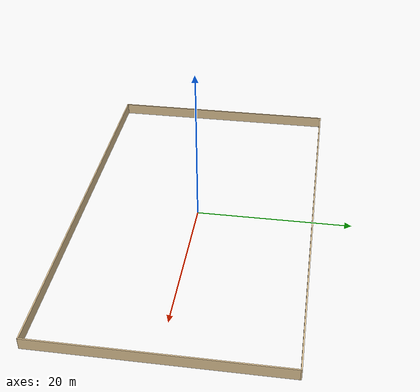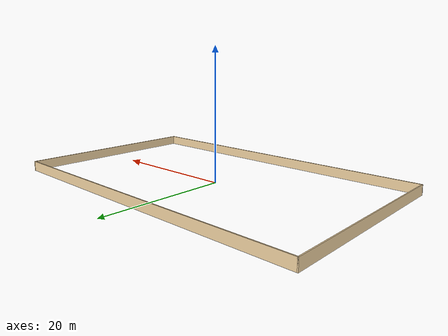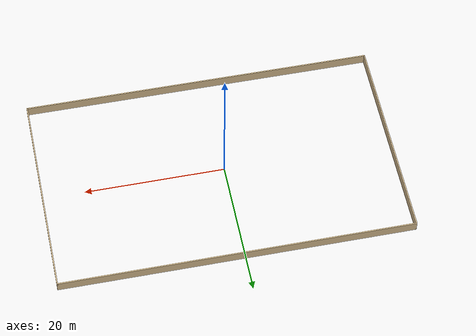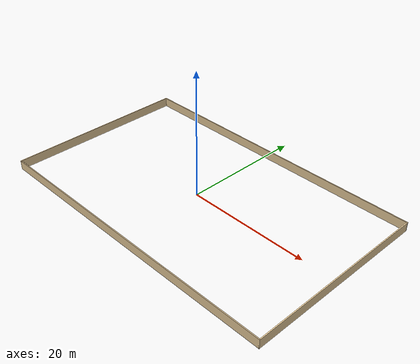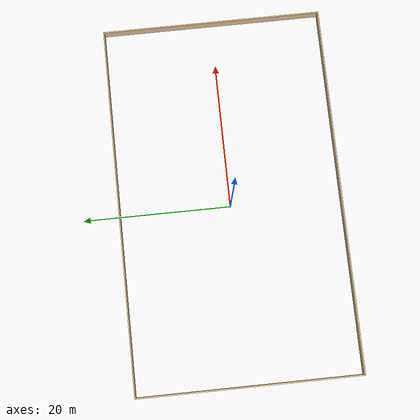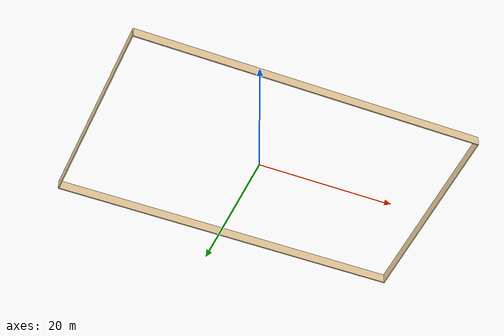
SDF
<?xml version='1.0'?>
<sdf version='1.6'>
  <model name='walls'>
    <pose frame=''>1 0 0 0 -0 0</pose>
    <link name='Wall_0'>
      <collision name='Wall_0_Collision'>
        <geometry>
          <box>
            <size>50.15 0.15 1.5</size>
          </box>
        </geometry>
        <pose frame=''>0 0 0.75 0 -0 0</pose>
      </collision>
      <visual name='Wall_0_Visual'>
        <pose frame=''>0 0 0.75 0 -0 0</pose>
        <geometry>
          <box>
            <size>50.15 0.15 1.5</size>
          </box>
        </geometry>
        <material>
          <script>
            <uri>file://media/materials/scripts/gazebo.material</uri>
            <name>Gazebo/Grey</name>
          </script>
          <ambient>0.921569 0.807843 0.615686 1</ambient>
        </material>
        <meta>
          <layer>0</layer>
        </meta>
      </visual>
      <pose frame=''>0 -15 0 0 -0 0</pose>
    </link>
    <link name='Wall_2'>
      <collision name='Wall_2_Collision'>
        <geometry>
          <box>
            <size>50.15 0.15 1.5</size>
          </box>
        </geometry>
        <pose frame=''>0 0 0.75 0 -0 0</pose>
      </collision>
      <visual name='Wall_2_Visual'>
        <pose frame=''>0 0 0.75 0 -0 0</pose>
        <geometry>
          <box>
            <size>50.15 0.15 1.5</size>
          </box>
        </geometry>
        <material>
          <script>
            <uri>file://media/materials/scripts/gazebo.material</uri>
            <name>Gazebo/Grey</name>
          </script>
          <ambient>0.921569 0.807843 0.615686 1</ambient>
        </material>
        <meta>
          <layer>0</layer>
        </meta>
      </visual>
      <pose frame=''>0 15 0 0 -0 0</pose>
    </link>
    <link name='Wall_5'>
      <collision name='Wall_5_Collision'>
        <geometry>
          <box>
            <size>30.15 0.15 1.5</size>
          </box>
        </geometry>
        <pose frame=''>0 0 0.75 0 -0 0</pose>
      </collision>
      <visual name='Wall_5_Visual'>
        <pose frame=''>0 0 0.75 0 -0 0</pose>
        <geometry>
          <box>
            <size>30.15 0.15 1.5</size>
          </box>
        </geometry>
        <material>
          <script>
            <uri>file://media/materials/scripts/gazebo.material</uri>
            <name>Gazebo/Grey</name>
          </script>
          <ambient>0.921569 0.807843 0.615686 1</ambient>
        </material>
        <meta>
          <layer>0</layer>
        </meta>
      </visual>
      <pose frame=''>-25 0 0 0 -0 1.5708</pose>
    </link>
    <link name='Wall_9'>
      <collision name='Wall_9_Collision'>
        <geometry>
          <box>
            <size>30.15 0.15 1.5</size>
          </box>
        </geometry>
        <pose frame=''>0 0 0.75 0 -0 0</pose>
      </collision>
      <visual name='Wall_9_Visual'>
        <pose frame=''>0 0 0.75 0 -0 0</pose>
        <geometry>
          <box>
            <size>30.15 0.15 1.5</size>
          </box>
        </geometry>
        <material>
          <script>
            <uri>file://media/materials/scripts/gazebo.material</uri>
            <name>Gazebo/Grey</name>
          </script>
          <ambient>0.921569 0.807843 0.615686 1</ambient>
        </material>
        <meta>
          <layer>0</layer>
        </meta>
      </visual>
      <pose frame=''>25 0 0 0 -0 1.5708</pose>
    </link>
    <static>1</static>
  </model>
</sdf>
